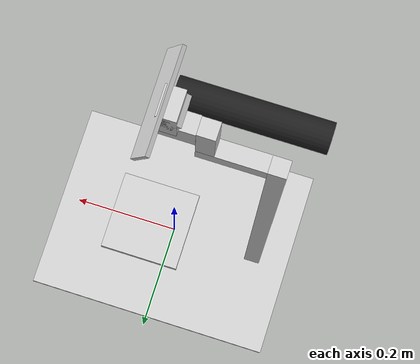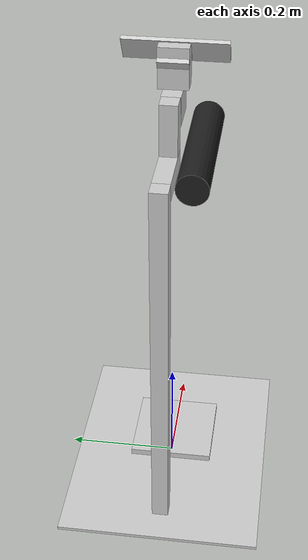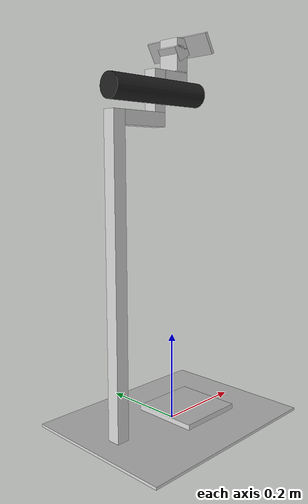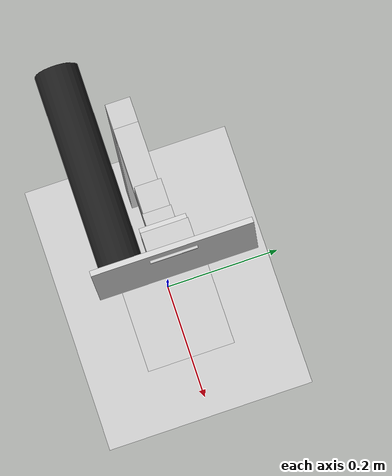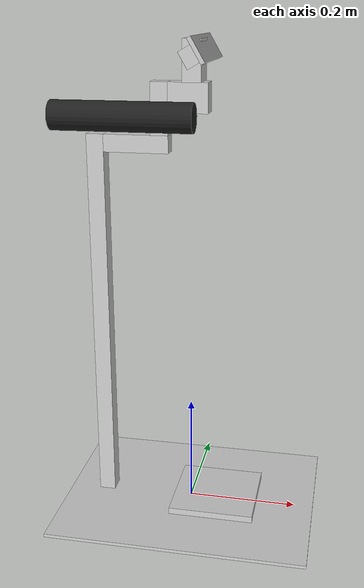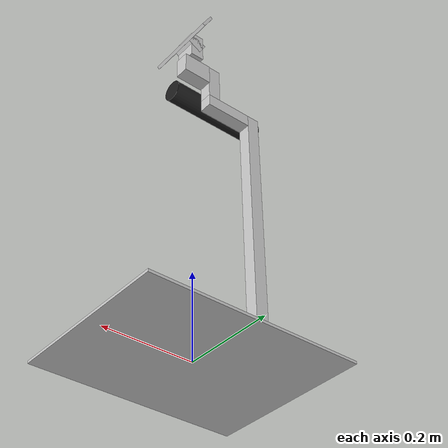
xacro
<?xml version="1.0"?>

  <!-- *** TODO: roll should be yaw here *** -->

<robot xmlns:sensor="http://playerstage.sourceforge.net/gazebo/xmlschema/#sensor"
  xmlns:controller="http://playerstage.sourceforge.net/gazebo/xmlschema/#controller"
  xmlns:interface="http://playerstage.sourceforge.net/gazebo/xmlschema/#interface"
  xmlns:xacro="http://ros.org/wiki/xacro"
  name="kurtana_rack">

  <include filename="$(find kurt_description)/common.xacro" />

  <property name="rackplate_length" value="0.47" />
  <property name="rackplate_width" value="0.368" />
  <property name="rackplate_height" value="0.023" />
  <property name="rackplate_mass" value="0.500" />
  <property name="baseplate_length" value="0.47" />
  <property name="baseplate_width" value="0.368" />
  <property name="baseplate_height" value="0.006" />
  <property name="baseplate_mass" value="0.500" />
  <property name="katana_baseplate_width" value="0.156" />
  <property name="katana_baseplate_height" value="0.012" />
  <property name="katana_baseplate_mass" value="0.4" />

  <property name="rackgap" value="0.055" />
  <property name="pole_length" value="0.695"/>
  <property name="pole_x_offset" value="-0.165"/>
  <property name="pole_mass" value="3.0"/>

  <property name="square_bar_width" value="0.03"/>
  <property name="horizontal_square_bar_length" value="0.113"/>
  <property name="horizontal_square_bar_mass" value="0.1"/>
  <property name="vertical_square_bar_length" value="0.0875"/>
  <property name="vertical_square_bar_mass" value="0.1"/>
  <property name="servo_width" value="0.05"/>
  <property name="servo_length" value="0.032"/>
  <property name="servo_height" value="0.068"/>
  <property name="servo_axis_offset" value="0.008"/>
  <property name="servo_mass" value="0.15"/>
  <property name="servo_roll_lower_limit" value="-0.5"/>
  <property name="servo_roll_upper_limit" value="0.5"/>
  <property name="servo_pitch_lower_limit" value="0.8"/>
  <property name="servo_pitch_upper_limit" value="1.2"/>
  <property name="pitch_servo_movable_part_height" value="0.035"/>
  <property name="kinect_mounting_plate_width" value="0.17" />
  <property name="kinect_mounting_plate_length" value="0.045" />
  <property name="kinect_mounting_plate_height" value="0.007" />
  <property name="kinect_mounting_plate_mass" value="0.05" />

  <property name="microphone_length" value="0.24" />
  <property name="microphone_radius" value="0.025" />
  <property name="microphone_mass" value="0.3" />
  <property name="microphone_x_offset" value="0.06" />
  <property name="microphone_y_offset" value="-0.055" />
  <property name="microphone_z_offset" value="0.035" />

  <property name="poletop_radius" value="0.025"/>
  <property name="poletop_length" value="0.04"/>
  <property name="poletop_mass" value="0.1"/>

  <!-- *** KURTana Rack *** -->

  <!-- baseplate = upper plate -->

  <link name="kurtana_baseplate_link">
    <visual>
      <origin xyz="0 0 0" rpy="0 0 0" />
      <geometry>
        <box size="${baseplate_length} ${baseplate_width} ${baseplate_height}" />
      </geometry>

      <material name="grey">
        <color rgba="0.8 0.8 0.8 1"/>
      </material>
    </visual>
    <collision>
      <origin xyz="0 0 0" rpy="0 0 0" />
      <geometry>
        <box size="${baseplate_length} ${baseplate_width} ${baseplate_height}" />
      </geometry>
    </collision>
    <xacro:box_inertial x="${baseplate_length}" y="${baseplate_width}" z="${baseplate_height}" mass="${baseplate_mass}" />
  </link>

  <joint name="katana_baseplate_joint" type="fixed">
    <parent link="kurtana_baseplate_link"/>
    <child link="katana_baseplate_link"/>
    <origin xyz="0.05 0 ${baseplate_height/2 + katana_baseplate_height/2}"/>
  </joint>

  <link name="katana_baseplate_link">
    <visual>
      <origin xyz="0 0 0" rpy="0 0 0" />
      <geometry>
        <box size="${katana_baseplate_width} ${katana_baseplate_width} ${katana_baseplate_height}" />
      </geometry>

      <material name="grey" />
    </visual>
    <collision>
      <origin xyz="0 0 0" rpy="0 0 0" />
      <geometry>
        <box size="${katana_baseplate_width} ${katana_baseplate_width} ${katana_baseplate_height}" />
      </geometry>
    </collision>
    <xacro:box_inertial x="${katana_baseplate_width}" y="${katana_baseplate_width}" z="${katana_baseplate_height}" mass="${katana_baseplate_mass}" />
  </link>

  <!-- pole = lower, fixed, hollow pole -->
  <joint name="kurtana_pole_joint" type="fixed">
    <parent link="kurtana_baseplate_link"/>
    <child link="kurtana_pole_link"/>
    <origin xyz="${pole_x_offset} 0 ${pole_length/2}"/>
  </joint>

  <link name="kurtana_pole_link">

     <visual>
      <origin xyz="0 0 0" rpy="0 0 0" />
      <geometry>
        <box size="${square_bar_width} ${square_bar_width} ${pole_length}" />
      </geometry>

      <material name="grey" />
    </visual>
    <collision>
      <origin xyz="0 0 0" rpy="0 0 0" />
      <geometry>
        <box size="${square_bar_width} ${square_bar_width} ${pole_length}" />
      </geometry>
    </collision>
    <xacro:box_inertial x="${square_bar_width}" y="${square_bar_width}" z="${pole_length}" mass="${pole_mass}" />

  </link>

  <joint name="kurtana_microphone_joint" type="fixed">
    <parent link="kurtana_pole_link"/>
    <child link="kurtana_microphone_link"/>
    <origin xyz="${microphone_x_offset} ${microphone_y_offset} ${pole_length/2 + microphone_z_offset}"/>
  </joint>

  <link name="kurtana_microphone_link">
    <visual>
      <origin xyz="0 0 0" rpy="0 ${M_PI/2} 0" />
      <geometry>
        <cylinder length="${microphone_length}" radius="${microphone_radius}" />
      </geometry>

      <material name="black" />
    </visual>
    <collision>
      <origin xyz="0 0 0" rpy="0 ${M_PI/2} 0" />
      <geometry>
        <cylinder length="${microphone_length}" radius="${microphone_radius}" />
      </geometry>
    </collision>
    <xacro:cylinder_inertial radius="${microphone_radius}" length="${microphone_length}"  mass="${microphone_mass}" />
  </link>

  <joint name="kurtana_horizontal_square_bar_joint" type="fixed">
    <parent link="kurtana_pole_link"/>
    <child link="kurtana_horizontal_square_bar_link"/>
    <origin xyz="${square_bar_width/2 + horizontal_square_bar_length/2} 0 ${pole_length/2 - square_bar_width/2}"/>
  </joint>

  <link name="kurtana_horizontal_square_bar_link">
    <visual>
      <origin xyz="0 0 0" rpy="0 0 0" />
      <geometry>
        <box size="${horizontal_square_bar_length} ${square_bar_width} ${square_bar_width}" />
      </geometry>

      <material name="grey" />
    </visual>
    <collision>
      <origin xyz="0 0 0" rpy="0 0 0" />
      <geometry>
        <box size="${horizontal_square_bar_length} ${square_bar_width} ${square_bar_width}" />
      </geometry>
    </collision>
    <xacro:box_inertial x="${horizontal_square_bar_length}" y="${square_bar_width}" z="${square_bar_width}" mass="${horizontal_square_bar_mass}" />
  </link>

  <joint name="kurtana_vertical_square_bar_joint" type="fixed">
    <parent link="kurtana_horizontal_square_bar_link"/>
    <child link="kurtana_vertical_square_bar_link"/>
    <origin xyz="${horizontal_square_bar_length/2 - square_bar_width/2} 0 ${vertical_square_bar_length/2 + square_bar_width/2}"/>
  </joint>

  <link name="kurtana_vertical_square_bar_link">
    <visual>
      <origin xyz="0 0 0" rpy="0 0 0" />
      <geometry>
        <box size="${square_bar_width} ${square_bar_width} ${vertical_square_bar_length}" />
      </geometry>

      <material name="grey" />
    </visual>
    <collision>
      <origin xyz="0 0 0" rpy="0 0 0" />
      <geometry>
        <box size="${square_bar_width} ${square_bar_width} ${vertical_square_bar_length}" />
      </geometry>
    </collision>
    <xacro:box_inertial x="${square_bar_width}" y="${square_bar_width}" z="${vertical_square_bar_length}" mass="${vertical_square_bar_mass}" />
  </link>

  <joint name="kurtana_roll_servo_joint" type="fixed">
    <parent link="kurtana_vertical_square_bar_link"/>
    <child link="kurtana_roll_servo_link"/>
    <origin xyz="${servo_height/2 + square_bar_width/2} 0 ${vertical_square_bar_length/2 - servo_width/2}"/>
  </joint>

  <link name="kurtana_roll_servo_link">
    <visual>
      <origin xyz="0 0 0" rpy="0 0 0" />
      <geometry>
        <box size="${servo_height} ${servo_length} ${servo_width}" />
      </geometry>

      <material name="grey" />
    </visual>
    <collision>
      <origin xyz="0 0 0" rpy="0 0 0" />
      <geometry>
        <box size="${servo_height} ${servo_length} ${servo_width}" />
      </geometry>
    </collision>
    <xacro:box_inertial x="${servo_height}" y="${servo_length}" z="${servo_width}" mass="${servo_mass}" />
  </link>

  <joint name="kurtana_roll_joint" type="revolute">
    <parent link="kurtana_roll_servo_link"/>
    <child link="kurtana_pitch_servo_link"/>
    <origin xyz="${servo_axis_offset} 0 ${servo_width/2 + servo_height/2}"/>
    <axis xyz="0 0 1"/>
    <limit effort="1000.0" lower="${servo_roll_lower_limit}" upper="${servo_roll_upper_limit}" velocity="2.0"/>
  </joint>

  <link name="kurtana_pitch_servo_link">
    <visual>
      <origin xyz="0 0 0" rpy="0 0 0" />
      <geometry>
        <box size="${servo_length} ${servo_width} ${servo_height}" />
      </geometry>

      <material name="grey" />
    </visual>
    <collision>
      <origin xyz="0 0 0" rpy="0 0 0" />
      <geometry>
        <box size="${servo_length} ${servo_width} ${servo_height}" />
      </geometry>
    </collision>
    <xacro:box_inertial x="${servo_length}" y="${servo_width}" z="${servo_height}" mass="${servo_mass}" />
  </link>

  <joint name="kurtana_pitch_joint" type="revolute">
    <parent link="kurtana_pitch_servo_link" />
    <child link="kurtana_pitch_servo_movable_part_link" />
    <origin xyz="0 0 ${servo_axis_offset}" rpy="0 0.045 0"/>
    <axis xyz="0 1 0"/>
    <limit effort="1000.0" lower="${servo_pitch_lower_limit}" upper="${servo_pitch_upper_limit}" velocity="2.0"/>
  </joint>

  <link name="kurtana_pitch_servo_movable_part_link">

  	 <visual>
      <origin xyz="0 0 0" rpy="0 0 0" />
      <geometry>
        <box size="${servo_length} ${servo_width} ${pitch_servo_movable_part_height}" />
      </geometry>

      <material name="grey" />
    </visual>
    <collision>
      <origin xyz="0 0 0" rpy="0 0 0" />
      <geometry>
        <box size="${servo_length} ${servo_width} ${pitch_servo_movable_part_height}" />
      </geometry>
    </collision>
    <xacro:box_inertial x="${servo_length}" y="${servo_width}" z="${pitch_servo_movable_part_height}" mass="${servo_mass}" />

  </link>

  <joint name="kurtana_kinect_mounting_plate_joint" type="fixed">
    <parent link="kurtana_pitch_servo_movable_part_link"/>
    <child link="kurtana_kinect_mounting_plate_link"/>
    <origin xyz="0 0 ${pitch_servo_movable_part_height/2 + kinect_mounting_plate_height/2}" rpy="0 0 0"/>
  </joint>

  <link name="kurtana_kinect_mounting_plate_link">
    <visual>
      <origin xyz="0 0 0" rpy="0 0 0" />
      <geometry>
        <box size="${kinect_mounting_plate_length} ${kinect_mounting_plate_width} ${kinect_mounting_plate_height}" />
      </geometry>

      <material name="grey" />
    </visual>
    <collision>
      <origin xyz="0 0 0" rpy="0 0 0" />
      <geometry>
        <box size="${kinect_mounting_plate_length} ${kinect_mounting_plate_width} ${kinect_mounting_plate_height}" />
      </geometry>
    </collision>
    <xacro:box_inertial x="${kinect_mounting_plate_length}" y="${kinect_mounting_plate_width}" z="${kinect_mounting_plate_height}" mass="${kinect_mounting_plate_mass}" />
  </link>

  <!-- *** Gazebo stuff *** -->

  <!-- transmissions are required by the controller manager (here: for simulation in gazebo) -->

  <xacro:macro name="kurtana_pole_transmission" params="name">
    <transmission name="${name}_trans" type="pr2_mechanism_model/SimpleTransmission">
      <actuator name="${name}_motor" />
      <joint name="${name}_joint" />
      <mechanicalReduction>1</mechanicalReduction>
      <motorTorqueConstant>1</motorTorqueConstant>
    </transmission>
  </xacro:macro>

  <xacro:kurtana_pole_transmission name="kurtana_stretch" />
  <xacro:kurtana_pole_transmission name="kurtana_roll" />
  <xacro:kurtana_pole_transmission name="kurtana_pitch" />

  <gazebo reference="kurtana_rackplate_link">
    <material value="PR2/Grey" />
  </gazebo>

  <gazebo reference="kurtana_baseplate_link">
    <material value="PR2/Grey" />
  </gazebo>

  <gazebo reference="kurtana_pole_link">
    <material value="PR2/Grey" />
  </gazebo>

  <gazebo reference="kurtana_innerpole_stretch_link">
    <material value="PR2/Grey" />
  </gazebo>

  <gazebo reference="kurtana_poletop_roll_link">
    <material value="PR2/Grey" />
  </gazebo>

  <gazebo reference="kurtana_pitchpole_link">
    <material value="PR2/Grey" />
  </gazebo>
</robot>
